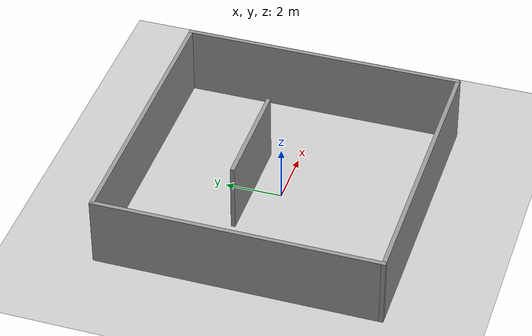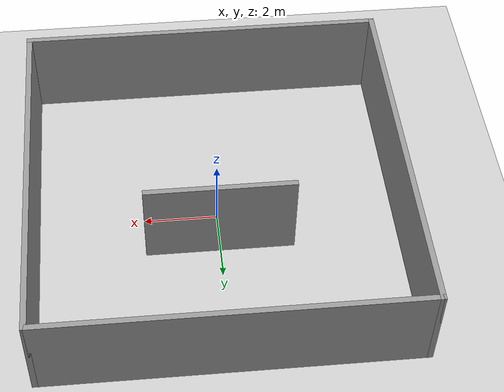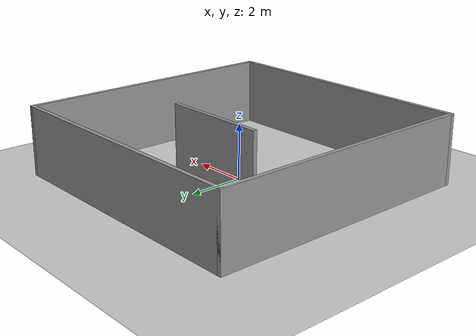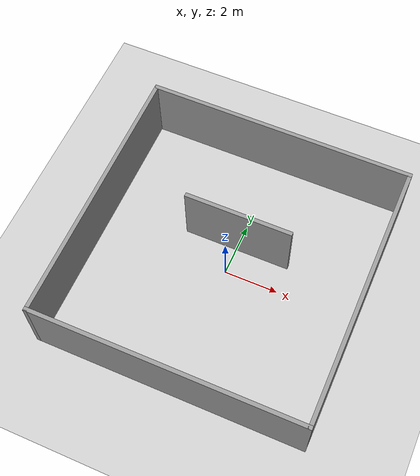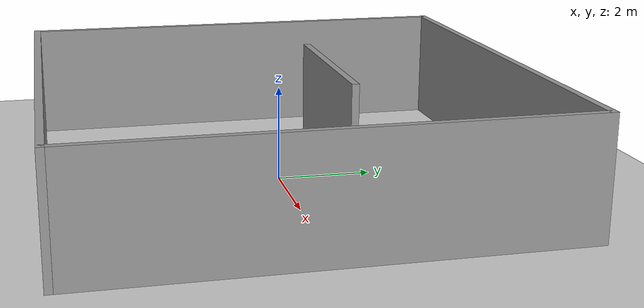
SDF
<sdf version="1.6">
 <world name="default">
  <light name="sun" type="directional">
   <pose>0 0 10 0 -0 0</pose>
   <diffuse>0.8 0.8 0.8 1</diffuse>
   <specular>0.1 0.1 0.1 1</specular>
   <attenuation>
    <range>1000</range>
    <constant>0.9</constant>
    <linear>0.01</linear>
    <quadratic>0.001</quadratic>
   </attenuation>
   <direction>-0.5 0.5 -1</direction>
  </light>
  <model name="ground_plane">
   <static>1</static>
   <link name="link">
    <collision name="collision">
     <geometry><plane><normal>0 0 1</normal><size>100 100</size></plane></geometry>
     <surface><friction><ode><mu>100</mu><mu2>50</mu2></ode></friction></surface>
    </collision>
    <visual name="visual">
     <cast_shadows>0</cast_shadows>
     <geometry><plane><normal>0 0 1</normal><size>100 100</size></plane></geometry>
     <material>
      <script><uri>file://media/materials/scripts/gazebo.material</uri><name>Gazebo/Grey</name></script>
     </material>
    </visual>
   </link>
  </model>
  <gravity>0 0 -9.8</gravity>
  <magnetic_field>6e-06 2.3e-05 -4.2e-05</magnetic_field>
  <atmosphere type="adiabatic"/>
  <physics name="default_physics" default="0" type="ode">
   <max_step_size>0.001</max_step_size>
   <real_time_factor>1</real_time_factor>
   <real_time_update_rate>1000</real_time_update_rate>
  </physics>
  <scene><ambient>0.4 0.4 0.4 1</ambient><background>0.7 0.7 0.7 1</background><shadows>1</shadows></scene>
  <spherical_coordinates>
   <surface_model>EARTH_WGS84</surface_model>
   <latitude_deg>0</latitude_deg>
   <longitude_deg>0</longitude_deg>
   <elevation>0</elevation>
   <heading_deg>0</heading_deg>
  </spherical_coordinates>
  <model name="10by10box">
   <pose>0.006861 0.012439 0 0 -0 0</pose>
   <link name="Wall_0">
    <collision name="Wall_0_Collision">
     <geometry><box><size>10 0.15 2.5</size></box></geometry>
     <pose>0 0 1.25 0 -0 0</pose>
    </collision>
    <visual name="Wall_0_Visual">
     <pose>0 0 1.25 0 -0 0</pose>
     <geometry><box><size>10 0.15 2.5</size></box></geometry>
     <material>
      <script><uri>file://media/materials/scripts/gazebo.material</uri><name>Gazebo/Grey</name></script>
      <ambient>1 1 1 1</ambient>
     </material>
    </visual>
    <pose>-4.925 0 0 0 -0 1.5708</pose>
   </link>
   <link name="Wall_1">
    <collision name="Wall_1_Collision">
     <geometry><box><size>10 0.15 2.5</size></box></geometry>
     <pose>0 0 1.25 0 -0 0</pose>
    </collision>
    <visual name="Wall_1_Visual">
     <pose>0 0 1.25 0 -0 0</pose>
     <geometry><box><size>10 0.15 2.5</size></box></geometry>
     <material>
      <script><uri>file://media/materials/scripts/gazebo.material</uri><name>Gazebo/Grey</name></script>
      <ambient>1 1 1 1</ambient>
     </material>
    </visual>
    <pose>0 4.925 0 0 -0 0</pose>
   </link>
   <link name="Wall_2">
    <collision name="Wall_2_Collision">
     <geometry><box><size>10 0.15 2.5</size></box></geometry>
     <pose>0 0 1.25 0 -0 0</pose>
    </collision>
    <visual name="Wall_2_Visual">
     <pose>0 0 1.25 0 -0 0</pose>
     <geometry><box><size>10 0.15 2.5</size></box></geometry>
     <material>
      <script><uri>file://media/materials/scripts/gazebo.material</uri><name>Gazebo/Grey</name></script>
      <ambient>1 1 1 1</ambient>
     </material>
    </visual>
    <pose>4.925 0 0 0 0 -1.5708</pose>
   </link>
   <link name="Wall_3">
    <collision name="Wall_3_Collision">
     <geometry><box><size>10 0.15 2.5</size></box></geometry>
     <pose>0 0 1.25 0 -0 0</pose>
    </collision>
    <visual name="Wall_3_Visual">
     <pose>0 0 1.25 0 -0 0</pose>
     <geometry><box><size>10 0.15 2.5</size></box></geometry>
     <material>
      <script><uri>file://media/materials/scripts/gazebo.material</uri><name>Gazebo/Grey</name></script>
      <ambient>1 1 1 1</ambient>
     </material>
    </visual>
    <pose>0 -4.925 0 0 -0 3.14159</pose>
   </link>
   <static>1</static>
  </model>
  <model name="stripe2">
   <pose>0.003288 1.09054 0 0 -0 0</pose>
   <link name="Wall_0">
    <collision name="Wall_0_Collision">
     <geometry><box><size>4 0.15 2.5</size></box></geometry>
     <pose>0 0 1.25 0 -0 0</pose>
    </collision>
    <visual name="Wall_0_Visual">
     <pose>0 0 1.25 0 -0 0</pose>
     <geometry><box><size>4 0.15 2.5</size></box></geometry>
     <material>
      <script><uri>file://media/materials/scripts/gazebo.material</uri><name>Gazebo/Grey</name></script>
      <ambient>1 1 1 1</ambient>
     </material>
    </visual>
   </link>
   <static>1</static>
  </model>
  <plugin name="gazebo_occupancy_map" filename="libgazebo_2Dmap_plugin.so">
   <map_resolution>0.1</map_resolution>
   <map_height>0.3</map_height>
   <map_size_x>10</map_size_x>
   <map_size_y>10</map_size_y>
   <init_robot_x>0</init_robot_x>
   <init_robot_y>0</init_robot_y>
  </plugin>
 </world>
</sdf>
